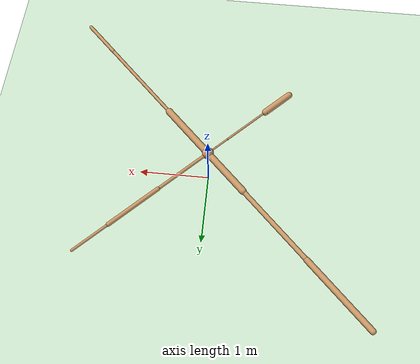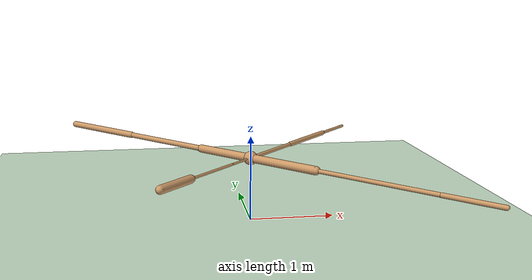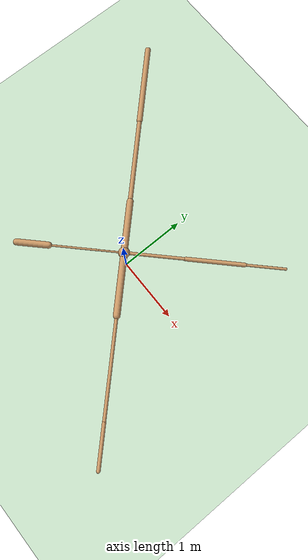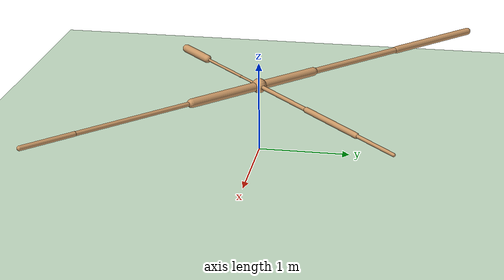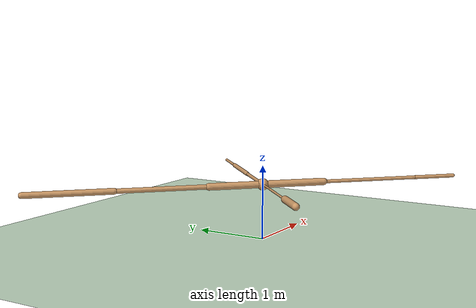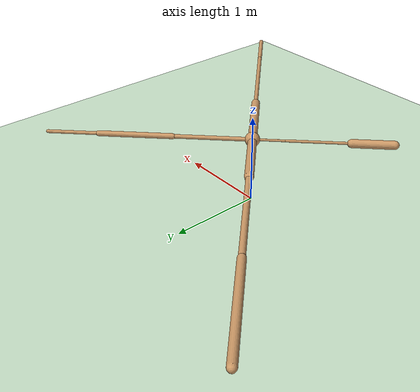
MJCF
<mujoco model="ant">
  <compiler angle="degree" coordinate="local" inertiafromgeom="true" />
  <option integrator="RK4" timestep="0.01" />
  <custom>
    <numeric data="0.0 0.0 0.55 1.0 0.0 0.0 0.0 0.0 1.0 0.0 -1.0 0.0 -1.0 0.0 1.0" name="init_qpos" />
  </custom>
  <default>
    <joint armature="1" damping="1" limited="true" />
    <geom conaffinity="0" condim="3" density="5.0" friction="1 0.5 0.5" margin="0.01" rgba="0.8 0.6 0.4 1" />
  </default>
  <asset>
    <texture builtin="gradient" height="100" rgb1="1 1 1" rgb2="0 0 0" type="skybox" width="100" />
    <texture builtin="flat" height="1278" mark="cross" markrgb="1 1 1" name="texgeom" random="0.01" rgb1="0.8 0.6 0.4" rgb2="0.8 0.6 0.4" type="cube" width="127" />
    <texture builtin="checker" height="100" name="texplane" rgb1="0 0 0" rgb2="0.8 0.8 0.8" type="2d" width="100" />
    <material name="MatPlane" reflectance="0.5" shininess="1" specular="1" texrepeat="60 60" texture="texplane" />
    <material name="geom" texture="texgeom" texuniform="true" />
  </asset>
  <worldbody>
    <light cutoff="100" diffuse="1 1 1" dir="-0 0 -1.3" directional="true" exponent="1" pos="0 0 1.3" specular=".1 .1 .1" />
    <geom conaffinity="1" condim="3" material="MatPlane" name="floor" pos="0 0 0" rgba="0.8 0.9 0.8 1" size="40 40 40" type="plane" />
    <body name="torso" pos="0 0 0.75">
      <camera name="track" mode="trackcom" pos="0 -11 5" xyaxes="1 0 0 0 0.5 1" />
      <geom name="torso_geom" pos="0 0 0" size="0.08012163639068604" type="sphere" />
      <joint armature="0" damping="0" limited="false" margin="0.01" name="root" pos="0 0 0" type="free" />
      <body name="front_left_leg" pos="0 0 0">
        <geom fromto="0 0 0 0.5968807935714722 0.5968807935714722 0" name="aux_1_geom" size="0.022531230002641678" type="capsule" />
        <body name="aux_1" pos="0.5968807935714722 0.5968807935714722 0">
          <joint axis="0 0 1" name="hip_1" pos="0.0 0.0 0.0" range="-30 30" type="hinge" />
          <geom fromto="0 0 0 0.5642155408859253 0.5642155408859253 0" name="left_leg_geom" size="0.02995866909623146" type="capsule" />
          <body name="left_leg_geom_aux" pos="0.5642155408859253 0.5642155408859253 0">
            <joint axis="-1 1 0" name="ankle_1" pos="0.0 0.0 0.0" range="30 70" type="hinge" />
            <geom fromto="0 0 0 0.39205634593963623 0.39205634593963623 0" name="left_ankle_geom" size="0.01878518797457218" type="capsule" />
          </body>
        </body>
      </body>
      <body name="front_right_leg" pos="0 0 0">
        <geom fromto="0 0 0 -0.5205721259117126 0.5205721259117126 0" name="aux_2_geom" size="0.0475345142185688" type="capsule" />
        <body name="aux_2" pos="-0.5205721259117126 0.5205721259117126 0">
          <joint axis="0 0 1" name="hip_2" pos="0.0 0.0 0.0" range="-30 30" type="hinge" />
          <geom fromto="0 0 0 -0.8687446713447571 0.8687446713447571 0" name="right_leg_geom" size="0.03273962438106537" type="capsule" />
          <body name="right_leg_geom_aux" pos="-0.8687446713447571 0.8687446713447571 0">
            <joint axis="1 1 0" name="ankle_2" pos="0.0 0.0 0.0" range="-70 -30" type="hinge" />
            <geom fromto="0 0 0 -0.8140044212341309 0.8140044212341309 0" name="right_ankle_geom" size="0.04090198501944542" type="capsule" />
          </body>
        </body>
      </body>
      <body name="back_leg" pos="0 0 0">
        <geom fromto="0 0 0 -0.24775347113609314 -0.24775347113609314 0" name="aux_3_geom" size="0.012758098542690277" type="capsule" />
        <body name="aux_3" pos="-0.24775347113609314 -0.24775347113609314 0">
          <joint axis="0 0 1" name="hip_3" pos="0.0 0.0 0.0" range="-30 30" type="hinge" />
          <geom fromto="0 0 0 -0.48287710547447205 -0.48287710547447205 0" name="back_leg_geom" size="0.01459077000617981" type="capsule" />
          <body name="back_leg_geom_aux" pos="-0.48287710547447205 -0.48287710547447205 0">
            <joint axis="-1 1 0" name="ankle_3" pos="0.0 0.0 0.0" range="-70 -30" type="hinge" />
            <geom fromto="0 0 0 -0.3137802481651306 -0.3137802481651306 0" name="third_ankle_geom" size="0.046283505856990814" type="capsule" />
          </body>
        </body>
      </body>
      <body name="right_back_leg" pos="0 0 0">
        <geom fromto="0 0 0 0.6076931357383728 -0.6076931357383728 0" name="aux_4_geom" size="0.04855448752641678" type="capsule" />
        <body name="aux_4" pos="0.6076931357383728 -0.6076931357383728 0">
          <joint axis="0 0 1" name="hip_4" pos="0.0 0.0 0.0" range="-30 30" type="hinge" />
          <geom fromto="0 0 0 0.9572907090187073 -0.9572907090187073 0" name="rightback_leg_geom" size="0.023818112909793854" type="capsule" />
          <body name="rightback_leg_geom_aux" pos="0.9572907090187073 -0.9572907090187073 0">
            <joint axis="1 1 0" name="ankle_4" pos="0.0 0.0 0.0" range="30 70" type="hinge" />
            <geom fromto="0 0 0 0.4115476608276367 -0.4115476608276367 0" name="fourth_ankle_geom" size="0.025724805891513824" type="capsule" />
          </body>
        </body>
      </body>
    </body>
  </worldbody>
  <actuator>
    <motor ctrllimited="true" ctrlrange="-1.0 1.0" joint="hip_4" gear="150" />
    <motor ctrllimited="true" ctrlrange="-1.0 1.0" joint="ankle_4" gear="150" />
    <motor ctrllimited="true" ctrlrange="-1.0 1.0" joint="hip_1" gear="150" />
    <motor ctrllimited="true" ctrlrange="-1.0 1.0" joint="ankle_1" gear="150" />
    <motor ctrllimited="true" ctrlrange="-1.0 1.0" joint="hip_2" gear="150" />
    <motor ctrllimited="true" ctrlrange="-1.0 1.0" joint="ankle_2" gear="150" />
    <motor ctrllimited="true" ctrlrange="-1.0 1.0" joint="hip_3" gear="150" />
    <motor ctrllimited="true" ctrlrange="-1.0 1.0" joint="ankle_3" gear="150" />
  </actuator>
</mujoco>
